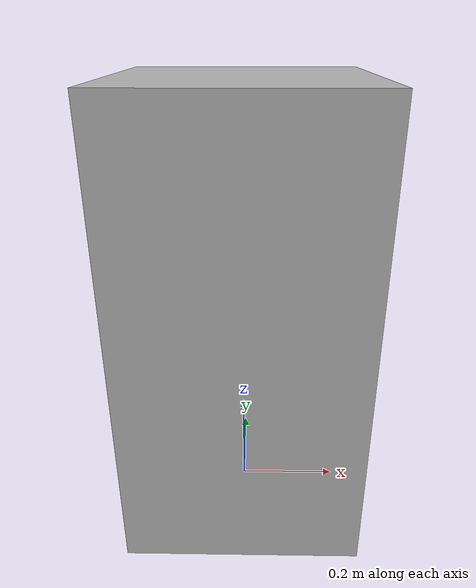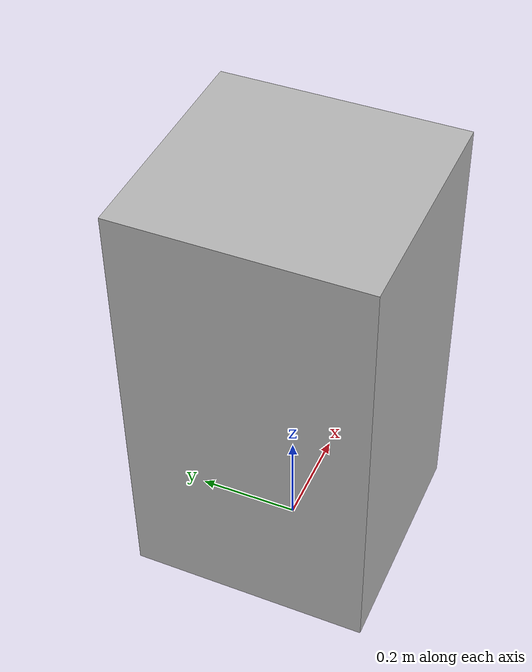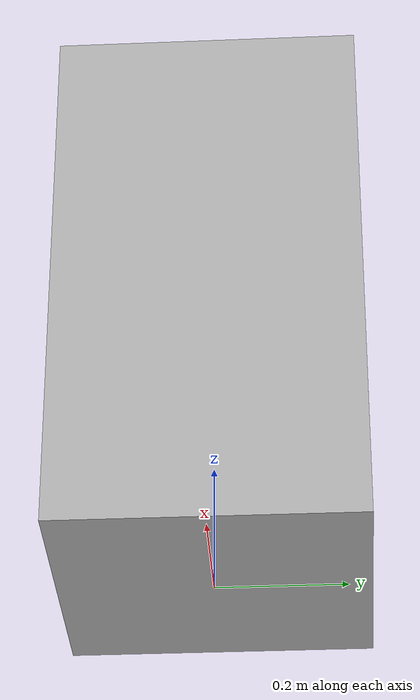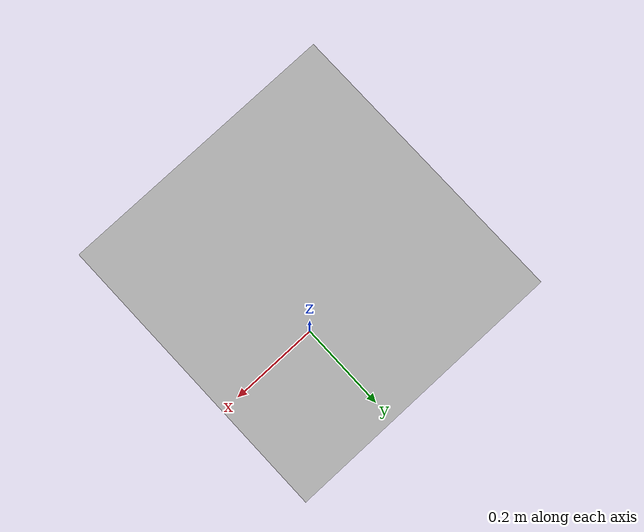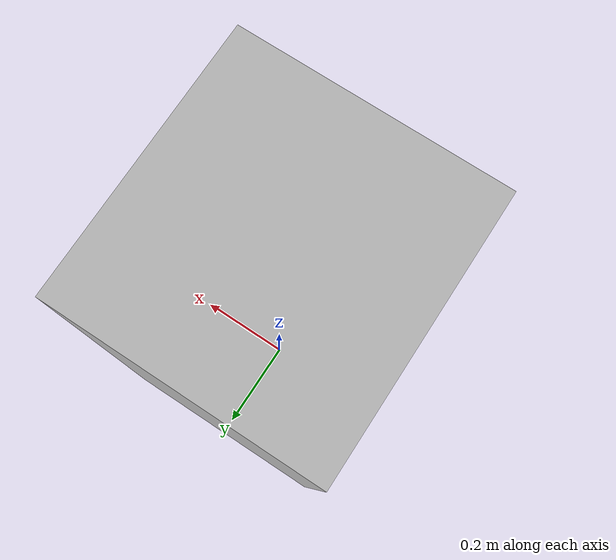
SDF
<?xml version="1.0"?>
<sdf version="1.6">
  <model name="rwc2018/fridge">
    <link name="1_link">
      <collision name="1_col">
        <geometry>
          <box>
            <size>0.45 0.47 0.86</size>
          </box>
        </geometry>
      </collision>
      <visual name="1_vis">
        <geometry>
          <box>
            <size>0.45 0.47 0.86</size>
          </box>
        </geometry>
      </visual>
      <pose>0 0 0.43 0 0 0</pose>
    </link>
    <link name="on_top_of">
      <virtual_volume name="on_top_of_vv">
        <geometry>
          <box>
            <size>0.445 0.41 0.25</size>
          </box>
        </geometry>
        <pose>0.0075 0.0 1.055 0 0 0</pose>
      </virtual_volume>
    </link>
    <link name="in_front_of">
      <virtual_volume name="in_front_of_vv">
        <geometry>
          <box>
            <size>0.2 0.27 0.01</size>
          </box>
        </geometry>
        <pose>0.725 0.0 0.005 0 0 0</pose>
      </virtual_volume>
    </link>
    <static>true</static>
  </model>
</sdf>
